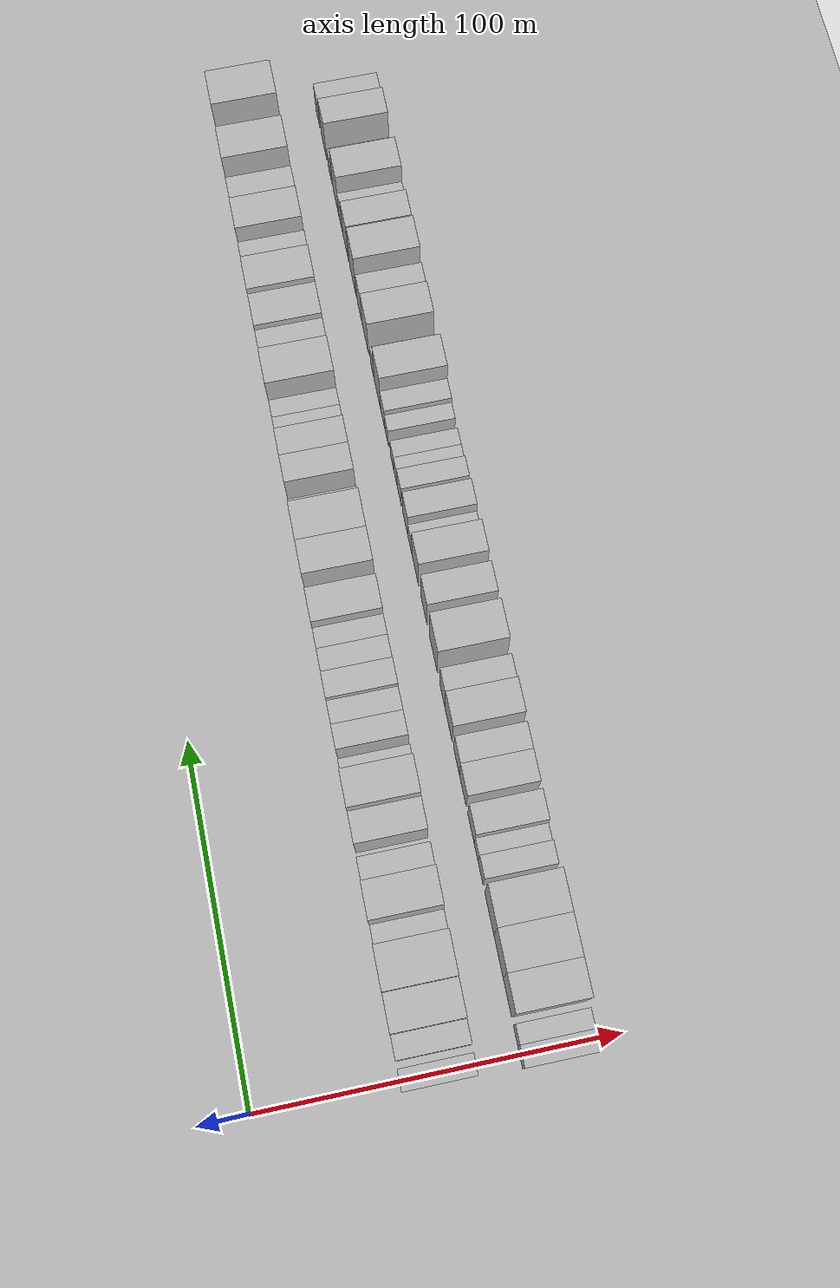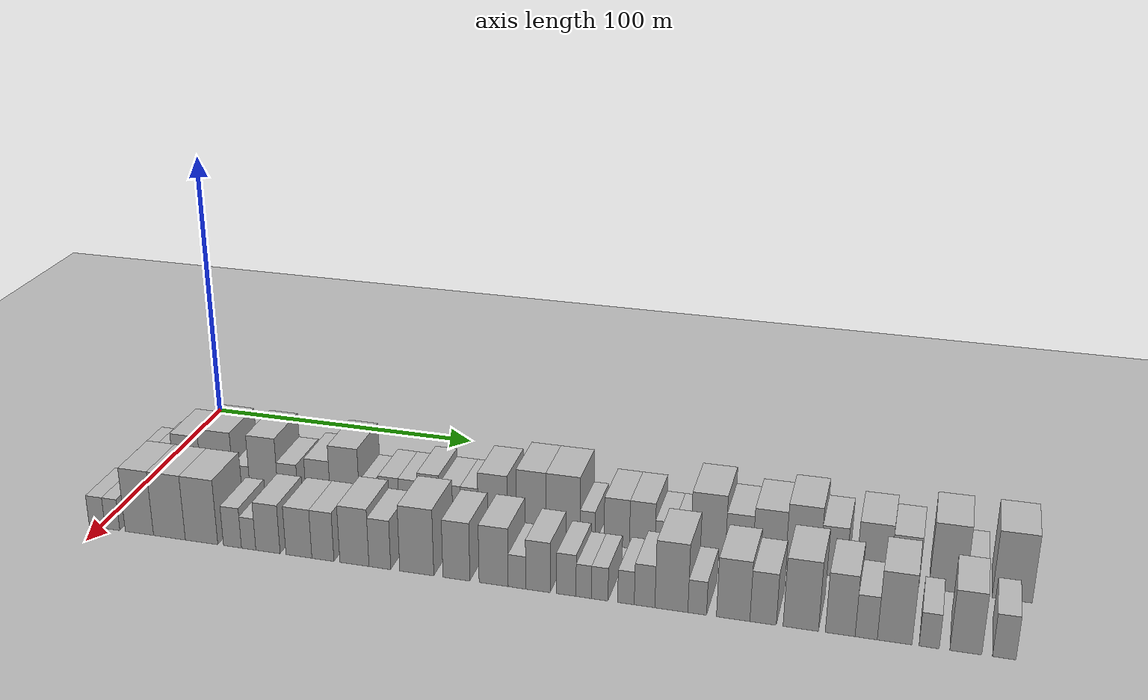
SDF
<sdf version="1.6">
 <world name="default">
  <include><name>ground_plane_1</name><uri>model://HANNAS_ground_plane</uri></include>
  <include>
   <name>ground_plane_2</name>
   <uri>model://HANNAS_ground_plane</uri>
   <pose>100 0 0  0 0 0</pose>
  </include>
  <model name="building_34">
   <static>1</static>
   <pose>50.0000 0.2510 0 0.000000 0.000000 0.000000</pose>
   <link name="link">
    <pose>0 0 6.00 0 0 0</pose>
    <collision name="collision"><geometry><box><size>20.0000 5.7335 12.0000</size></box></geometry></collision>
    <visual name="visual">
     <cast_shadows>0</cast_shadows>
     <geometry><box><size>20.0000 5.7335 12.0000</size></box></geometry>
     <material>
      <script>
       <uri>model://HANNAS_wall/materials/scripts</uri>
       <uri>model://HANNAS_wall/materials/textures</uri>
       <name>vrc/HANNAS_wall</name>
      </script>
     </material>
    </visual>
   </link>
  </model>
  <model name="building_35">
   <static>1</static>
   <pose>50.0000 8.3364 0 0.000000 0.000000 0.000000</pose>
   <link name="link">
    <pose>0 0 7.50 0 0 0</pose>
    <collision name="collision"><geometry><box><size>20.0000 6.4373 15.0000</size></box></geometry></collision>
    <visual name="visual">
     <cast_shadows>0</cast_shadows>
     <geometry><box><size>20.0000 6.4373 15.0000</size></box></geometry>
     <material>
      <script>
       <uri>model://HANNAS_wall/materials/scripts</uri>
       <uri>model://HANNAS_wall/materials/textures</uri>
       <name>vrc/HANNAS_wall</name>
      </script>
     </material>
    </visual>
   </link>
  </model>
  <model name="building_36">
   <static>1</static>
   <pose>50.0000 16.7058 0 0.000000 0.000000 0.000000</pose>
   <link name="link">
    <pose>0 0 10.50 0 0 0</pose>
    <collision name="collision"><geometry><box><size>20.0000 10.3015 21.0000</size></box></geometry></collision>
    <visual name="visual">
     <cast_shadows>0</cast_shadows>
     <geometry><box><size>20.0000 10.3015 21.0000</size></box></geometry>
     <material>
      <script>
       <uri>model://HANNAS_wall/materials/scripts</uri>
       <uri>model://HANNAS_wall/materials/textures</uri>
       <name>vrc/HANNAS_wall</name>
      </script>
     </material>
    </visual>
   </link>
  </model>
  <model name="building_37">
   <static>1</static>
   <pose>50.0000 27.8285 0 0.000000 0.000000 0.000000</pose>
   <link name="link">
    <pose>0 0 12.00 0 0 0</pose>
    <collision name="collision"><geometry><box><size>20.0000 11.9438 24.0000</size></box></geometry></collision>
    <visual name="visual">
     <cast_shadows>0</cast_shadows>
     <geometry><box><size>20.0000 11.9438 24.0000</size></box></geometry>
     <material>
      <script>
       <uri>model://HANNAS_wall/materials/scripts</uri>
       <uri>model://HANNAS_wall/materials/textures</uri>
       <name>vrc/HANNAS_wall</name>
      </script>
     </material>
    </visual>
   </link>
  </model>
  <model name="building_38">
   <static>1</static>
   <pose>50.0000 36.7897 0 0.000000 0.000000 0.000000</pose>
   <link name="link">
    <pose>0 0 6.00 0 0 0</pose>
    <collision name="collision"><geometry><box><size>20.0000 5.9785 12.0000</size></box></geometry></collision>
    <visual name="visual">
     <cast_shadows>0</cast_shadows>
     <geometry><box><size>20.0000 5.9785 12.0000</size></box></geometry>
     <material>
      <script>
       <uri>model://HANNAS_wall/materials/scripts</uri>
       <uri>model://HANNAS_wall/materials/textures</uri>
       <name>vrc/HANNAS_wall</name>
      </script>
     </material>
    </visual>
   </link>
  </model>
  <model name="building_39">
   <static>1</static>
   <pose>50.0000 44.9411 0 0.000000 0.000000 0.000000</pose>
   <link name="link">
    <pose>0 0 12.00 0 0 0</pose>
    <collision name="collision"><geometry><box><size>20.0000 10.3244 24.0000</size></box></geometry></collision>
    <visual name="visual">
     <cast_shadows>0</cast_shadows>
     <geometry><box><size>20.0000 10.3244 24.0000</size></box></geometry>
     <material>
      <script>
       <uri>model://HANNAS_wall/materials/scripts</uri>
       <uri>model://HANNAS_wall/materials/textures</uri>
       <name>vrc/HANNAS_wall</name>
      </script>
     </material>
    </visual>
   </link>
  </model>
  <model name="building_40">
   <static>1</static>
   <pose>50.0000 53.7202 0 0.000000 0.000000 0.000000</pose>
   <link name="link">
    <pose>0 0 7.50 0 0 0</pose>
    <collision name="collision"><geometry><box><size>20.0000 7.2339 15.0000</size></box></geometry></collision>
    <visual name="visual">
     <cast_shadows>0</cast_shadows>
     <geometry><box><size>20.0000 7.2339 15.0000</size></box></geometry>
     <material>
      <script>
       <uri>model://HANNAS_wall/materials/scripts</uri>
       <uri>model://HANNAS_wall/materials/textures</uri>
       <name>vrc/HANNAS_wall</name>
      </script>
     </material>
    </visual>
   </link>
  </model>
  <model name="building_41">
   <static>1</static>
   <pose>50.0000 64.7341 0 0.000000 0.000000 0.000000</pose>
   <link name="link">
    <pose>0 0 9.00 0 0 0</pose>
    <collision name="collision"><geometry><box><size>20.0000 8.7940 18.0000</size></box></geometry></collision>
    <visual name="visual">
     <cast_shadows>0</cast_shadows>
     <geometry><box><size>20.0000 8.7940 18.0000</size></box></geometry>
     <material>
      <script>
       <uri>model://HANNAS_wall/materials/scripts</uri>
       <uri>model://HANNAS_wall/materials/textures</uri>
       <name>vrc/HANNAS_wall</name>
      </script>
     </material>
    </visual>
   </link>
  </model>
  <model name="building_42">
   <static>1</static>
   <pose>50.0000 74.3640 0 0.000000 0.000000 0.000000</pose>
   <link name="link">
    <pose>0 0 12.00 0 0 0</pose>
    <collision name="collision"><geometry><box><size>20.0000 10.4658 24.0000</size></box></geometry></collision>
    <visual name="visual">
     <cast_shadows>0</cast_shadows>
     <geometry><box><size>20.0000 10.4658 24.0000</size></box></geometry>
     <material>
      <script>
       <uri>model://HANNAS_wall/materials/scripts</uri>
       <uri>model://HANNAS_wall/materials/textures</uri>
       <name>vrc/HANNAS_wall</name>
      </script>
     </material>
    </visual>
   </link>
  </model>
  <model name="building_43">
   <static>1</static>
   <pose>50.0000 82.0531 0 0.000000 0.000000 0.000000</pose>
   <link name="link">
    <pose>0 0 6.00 0 0 0</pose>
    <collision name="collision"><geometry><box><size>20.0000 4.9122 12.0000</size></box></geometry></collision>
    <visual name="visual">
     <cast_shadows>0</cast_shadows>
     <geometry><box><size>20.0000 4.9122 12.0000</size></box></geometry>
     <material>
      <script>
       <uri>model://HANNAS_wall/materials/scripts</uri>
       <uri>model://HANNAS_wall/materials/textures</uri>
       <name>vrc/HANNAS_wall</name>
      </script>
     </material>
    </visual>
   </link>
  </model>
  <model name="building_44">
   <static>1</static>
   <pose>50.0000 90.0316 0 0.000000 0.000000 0.000000</pose>
   <link name="link">
    <pose>0 0 7.50 0 0 0</pose>
    <collision name="collision"><geometry><box><size>20.0000 7.0448 15.0000</size></box></geometry></collision>
    <visual name="visual">
     <cast_shadows>0</cast_shadows>
     <geometry><box><size>20.0000 7.0448 15.0000</size></box></geometry>
     <material>
      <script>
       <uri>model://HANNAS_wall/materials/scripts</uri>
       <uri>model://HANNAS_wall/materials/textures</uri>
       <name>vrc/HANNAS_wall</name>
      </script>
     </material>
    </visual>
   </link>
  </model>
  <model name="building_45">
   <static>1</static>
   <pose>50.0000 96.8660 0 0.000000 0.000000 0.000000</pose>
   <link name="link">
    <pose>0 0 7.50 0 0 0</pose>
    <collision name="collision"><geometry><box><size>20.0000 6.6240 15.0000</size></box></geometry></collision>
    <visual name="visual">
     <cast_shadows>0</cast_shadows>
     <geometry><box><size>20.0000 6.6240 15.0000</size></box></geometry>
     <material>
      <script>
       <uri>model://HANNAS_wall/materials/scripts</uri>
       <uri>model://HANNAS_wall/materials/textures</uri>
       <name>vrc/HANNAS_wall</name>
      </script>
     </material>
    </visual>
   </link>
  </model>
  <model name="building_46">
   <static>1</static>
   <pose>50.0000 103.9636 0 0.000000 0.000000 0.000000</pose>
   <link name="link">
    <pose>0 0 9.00 0 0 0</pose>
    <collision name="collision"><geometry><box><size>20.0000 7.5711 18.0000</size></box></geometry></collision>
    <visual name="visual">
     <cast_shadows>0</cast_shadows>
     <geometry><box><size>20.0000 7.5711 18.0000</size></box></geometry>
     <material>
      <script>
       <uri>model://HANNAS_wall/materials/scripts</uri>
       <uri>model://HANNAS_wall/materials/textures</uri>
       <name>vrc/HANNAS_wall</name>
      </script>
     </material>
    </visual>
   </link>
  </model>
  <model name="building_47">
   <static>1</static>
   <pose>50.0000 111.4161 0 0.000000 0.000000 0.000000</pose>
   <link name="link">
    <pose>0 0 7.50 0 0 0</pose>
    <collision name="collision"><geometry><box><size>20.0000 7.3340 15.0000</size></box></geometry></collision>
    <visual name="visual">
     <cast_shadows>0</cast_shadows>
     <geometry><box><size>20.0000 7.3340 15.0000</size></box></geometry>
     <material>
      <script>
       <uri>model://HANNAS_wall/materials/scripts</uri>
       <uri>model://HANNAS_wall/materials/textures</uri>
       <name>vrc/HANNAS_wall</name>
      </script>
     </material>
    </visual>
   </link>
  </model>
  <model name="building_48">
   <static>1</static>
   <pose>50.0000 118.0838 0 0.000000 0.000000 0.000000</pose>
   <link name="link">
    <pose>0 0 7.50 0 0 0</pose>
    <collision name="collision"><geometry><box><size>20.0000 6.0014 15.0000</size></box></geometry></collision>
    <visual name="visual">
     <cast_shadows>0</cast_shadows>
     <geometry><box><size>20.0000 6.0014 15.0000</size></box></geometry>
     <material>
      <script>
       <uri>model://HANNAS_wall/materials/scripts</uri>
       <uri>model://HANNAS_wall/materials/textures</uri>
       <name>vrc/HANNAS_wall</name>
      </script>
     </material>
    </visual>
   </link>
  </model>
  <model name="building_49">
   <static>1</static>
   <pose>50.0000 126.0789 0 0.000000 0.000000 0.000000</pose>
   <link name="link">
    <pose>0 0 10.50 0 0 0</pose>
    <collision name="collision"><geometry><box><size>20.0000 9.9887 21.0000</size></box></geometry></collision>
    <visual name="visual">
     <cast_shadows>0</cast_shadows>
     <geometry><box><size>20.0000 9.9887 21.0000</size></box></geometry>
     <material>
      <script>
       <uri>model://HANNAS_wall/materials/scripts</uri>
       <uri>model://HANNAS_wall/materials/textures</uri>
       <name>vrc/HANNAS_wall</name>
      </script>
     </material>
    </visual>
   </link>
  </model>
  <model name="building_50">
   <static>1</static>
   <pose>50.0000 139.0721 0 0.000000 0.000000 0.000000</pose>
   <link name="link">
    <pose>0 0 12.00 0 0 0</pose>
    <collision name="collision"><geometry><box><size>20.0000 9.9978 24.0000</size></box></geometry></collision>
    <visual name="visual">
     <cast_shadows>0</cast_shadows>
     <geometry><box><size>20.0000 9.9978 24.0000</size></box></geometry>
     <material>
      <script>
       <uri>model://HANNAS_wall/materials/scripts</uri>
       <uri>model://HANNAS_wall/materials/textures</uri>
       <name>vrc/HANNAS_wall</name>
      </script>
     </material>
    </visual>
   </link>
  </model>
  <model name="building_51">
   <static>1</static>
   <pose>50.0000 149.7986 0 0.000000 0.000000 0.000000</pose>
   <link name="link">
    <pose>0 0 12.00 0 0 0</pose>
    <collision name="collision"><geometry><box><size>20.0000 11.4551 24.0000</size></box></geometry></collision>
    <visual name="visual">
     <cast_shadows>0</cast_shadows>
     <geometry><box><size>20.0000 11.4551 24.0000</size></box></geometry>
     <material>
      <script>
       <uri>model://HANNAS_wall/materials/scripts</uri>
       <uri>model://HANNAS_wall/materials/textures</uri>
       <name>vrc/HANNAS_wall</name>
      </script>
     </material>
    </visual>
   </link>
  </model>
  <model name="building_52">
   <static>1</static>
   <pose>50.0000 158.0299 0 0.000000 0.000000 0.000000</pose>
   <link name="link">
    <pose>0 0 6.00 0 0 0</pose>
    <collision name="collision"><geometry><box><size>20.0000 5.0075 12.0000</size></box></geometry></collision>
    <visual name="visual">
     <cast_shadows>0</cast_shadows>
     <geometry><box><size>20.0000 5.0075 12.0000</size></box></geometry>
     <material>
      <script>
       <uri>model://HANNAS_wall/materials/scripts</uri>
       <uri>model://HANNAS_wall/materials/textures</uri>
       <name>vrc/HANNAS_wall</name>
      </script>
     </material>
    </visual>
   </link>
  </model>
  <model name="building_53">
   <static>1</static>
   <pose>50.0000 167.7254 0 0.000000 0.000000 0.000000</pose>
   <link name="link">
    <pose>0 0 9.00 0 0 0</pose>
    <collision name="collision"><geometry><box><size>20.0000 8.3835 18.0000</size></box></geometry></collision>
    <visual name="visual">
     <cast_shadows>0</cast_shadows>
     <geometry><box><size>20.0000 8.3835 18.0000</size></box></geometry>
     <material>
      <script>
       <uri>model://HANNAS_wall/materials/scripts</uri>
       <uri>model://HANNAS_wall/materials/textures</uri>
       <name>vrc/HANNAS_wall</name>
      </script>
     </material>
    </visual>
   </link>
  </model>
  <model name="building_54">
   <static>1</static>
   <pose>50.0000 176.0990 0 0.000000 0.000000 0.000000</pose>
   <link name="link">
    <pose>0 0 9.00 0 0 0</pose>
    <collision name="collision"><geometry><box><size>20.0000 8.3637 18.0000</size></box></geometry></collision>
    <visual name="visual">
     <cast_shadows>0</cast_shadows>
     <geometry><box><size>20.0000 8.3637 18.0000</size></box></geometry>
     <material>
      <script>
       <uri>model://HANNAS_wall/materials/scripts</uri>
       <uri>model://HANNAS_wall/materials/textures</uri>
       <name>vrc/HANNAS_wall</name>
      </script>
     </material>
    </visual>
   </link>
  </model>
  <model name="building_55">
   <static>1</static>
   <pose>50.0000 183.2807 0 0.000000 0.000000 0.000000</pose>
   <link name="link">
    <pose>0 0 6.00 0 0 0</pose>
    <collision name="collision"><geometry><box><size>20.0000 5.9995 12.0000</size></box></geometry></collision>
    <visual name="visual">
     <cast_shadows>0</cast_shadows>
     <geometry><box><size>20.0000 5.9995 12.0000</size></box></geometry>
     <material>
      <script>
       <uri>model://HANNAS_wall/materials/scripts</uri>
       <uri>model://HANNAS_wall/materials/textures</uri>
       <name>vrc/HANNAS_wall</name>
      </script>
     </material>
    </visual>
   </link>
  </model>
  <model name="building_56">
   <static>1</static>
   <pose>50.0000 189.0195 0 0.000000 0.000000 0.000000</pose>
   <link name="link">
    <pose>0 0 6.00 0 0 0</pose>
    <collision name="collision"><geometry><box><size>20.0000 5.4782 12.0000</size></box></geometry></collision>
    <visual name="visual">
     <cast_shadows>0</cast_shadows>
     <geometry><box><size>20.0000 5.4782 12.0000</size></box></geometry>
     <material>
      <script>
       <uri>model://HANNAS_wall/materials/scripts</uri>
       <uri>model://HANNAS_wall/materials/textures</uri>
       <name>vrc/HANNAS_wall</name>
      </script>
     </material>
    </visual>
   </link>
  </model>
  <model name="building_57">
   <static>1</static>
   <pose>50.0000 197.3581 0 0.000000 0.000000 0.000000</pose>
   <link name="link">
    <pose>0 0 12.00 0 0 0</pose>
    <collision name="collision"><geometry><box><size>20.0000 11.1989 24.0000</size></box></geometry></collision>
    <visual name="visual">
     <cast_shadows>0</cast_shadows>
     <geometry><box><size>20.0000 11.1989 24.0000</size></box></geometry>
     <material>
      <script>
       <uri>model://HANNAS_wall/materials/scripts</uri>
       <uri>model://HANNAS_wall/materials/textures</uri>
       <name>vrc/HANNAS_wall</name>
      </script>
     </material>
    </visual>
   </link>
  </model>
  <model name="building_58">
   <static>1</static>
   <pose>50.0000 207.3073 0 0.000000 0.000000 0.000000</pose>
   <link name="link">
    <pose>0 0 9.00 0 0 0</pose>
    <collision name="collision"><geometry><box><size>20.0000 8.6995 18.0000</size></box></geometry></collision>
    <visual name="visual">
     <cast_shadows>0</cast_shadows>
     <geometry><box><size>20.0000 8.6995 18.0000</size></box></geometry>
     <material>
      <script>
       <uri>model://HANNAS_wall/materials/scripts</uri>
       <uri>model://HANNAS_wall/materials/textures</uri>
       <name>vrc/HANNAS_wall</name>
      </script>
     </material>
    </visual>
   </link>
  </model>
  <model name="building_59">
   <static>1</static>
   <pose>50.0000 216.8353 0 0.000000 0.000000 0.000000</pose>
   <link name="link">
    <pose>0 0 10.50 0 0 0</pose>
    <collision name="collision"><geometry><box><size>20.0000 10.3565 21.0000</size></box></geometry></collision>
    <visual name="visual">
     <cast_shadows>0</cast_shadows>
     <geometry><box><size>20.0000 10.3565 21.0000</size></box></geometry>
     <material>
      <script>
       <uri>model://HANNAS_wall/materials/scripts</uri>
       <uri>model://HANNAS_wall/materials/textures</uri>
       <name>vrc/HANNAS_wall</name>
      </script>
     </material>
    </visual>
   </link>
  </model>
  <model name="building_60">
   <static>1</static>
   <pose>50.0000 227.3803 0 0.000000 0.000000 0.000000</pose>
   <link name="link">
    <pose>0 0 12.00 0 0 0</pose>
    <collision name="collision"><geometry><box><size>20.0000 10.7336 24.0000</size></box></geometry></collision>
    <visual name="visual">
     <cast_shadows>0</cast_shadows>
     <geometry><box><size>20.0000 10.7336 24.0000</size></box></geometry>
     <material>
      <script>
       <uri>model://HANNAS_wall/materials/scripts</uri>
       <uri>model://HANNAS_wall/materials/textures</uri>
       <name>vrc/HANNAS_wall</name>
      </script>
     </material>
    </visual>
   </link>
  </model>
  <model name="building_61">
   <static>1</static>
   <pose>50.0000 236.8530 0 0.000000 0.000000 0.000000</pose>
   <link name="link">
    <pose>0 0 9.00 0 0 0</pose>
    <collision name="collision"><geometry><box><size>20.0000 8.2119 18.0000</size></box></geometry></collision>
    <visual name="visual">
     <cast_shadows>0</cast_shadows>
     <geometry><box><size>20.0000 8.2119 18.0000</size></box></geometry>
     <material>
      <script>
       <uri>model://HANNAS_wall/materials/scripts</uri>
       <uri>model://HANNAS_wall/materials/textures</uri>
       <name>vrc/HANNAS_wall</name>
      </script>
     </material>
    </visual>
   </link>
  </model>
  <model name="building_62">
   <static>1</static>
   <pose>50.0000 249.1759 0 0.000000 0.000000 0.000000</pose>
   <link name="link">
    <pose>0 0 10.50 0 0 0</pose>
    <collision name="collision"><geometry><box><size>20.0000 10.4338 21.0000</size></box></geometry></collision>
    <visual name="visual">
     <cast_shadows>0</cast_shadows>
     <geometry><box><size>20.0000 10.4338 21.0000</size></box></geometry>
     <material>
      <script>
       <uri>model://HANNAS_wall/materials/scripts</uri>
       <uri>model://HANNAS_wall/materials/textures</uri>
       <name>vrc/HANNAS_wall</name>
      </script>
     </material>
    </visual>
   </link>
  </model>
  <model name="building_63">
   <static>1</static>
   <pose>50.0000 258.8186 0 0.000000 0.000000 0.000000</pose>
   <link name="link">
    <pose>0 0 9.00 0 0 0</pose>
    <collision name="collision"><geometry><box><size>20.0000 8.8517 18.0000</size></box></geometry></collision>
    <visual name="visual">
     <cast_shadows>0</cast_shadows>
     <geometry><box><size>20.0000 8.8517 18.0000</size></box></geometry>
     <material>
      <script>
       <uri>model://HANNAS_wall/materials/scripts</uri>
       <uri>model://HANNAS_wall/materials/textures</uri>
       <name>vrc/HANNAS_wall</name>
      </script>
     </material>
    </visual>
   </link>
  </model>
  <model name="building_64">
   <static>1</static>
   <pose>50.0000 271.7343 0 0.000000 0.000000 0.000000</pose>
   <link name="link">
    <pose>0 0 12.00 0 0 0</pose>
    <collision name="collision"><geometry><box><size>20.0000 10.9798 24.0000</size></box></geometry></collision>
    <visual name="visual">
     <cast_shadows>0</cast_shadows>
     <geometry><box><size>20.0000 10.9798 24.0000</size></box></geometry>
     <material>
      <script>
       <uri>model://HANNAS_wall/materials/scripts</uri>
       <uri>model://HANNAS_wall/materials/textures</uri>
       <name>vrc/HANNAS_wall</name>
      </script>
     </material>
    </visual>
   </link>
  </model>
  <model name="building_65">
   <static>1</static>
   <pose>50.0000 280.1727 0 0.000000 0.000000 0.000000</pose>
   <link name="link">
    <pose>0 0 6.00 0 0 0</pose>
    <collision name="collision"><geometry><box><size>20.0000 5.8970 12.0000</size></box></geometry></collision>
    <visual name="visual">
     <cast_shadows>0</cast_shadows>
     <geometry><box><size>20.0000 5.8970 12.0000</size></box></geometry>
     <material>
      <script>
       <uri>model://HANNAS_wall/materials/scripts</uri>
       <uri>model://HANNAS_wall/materials/textures</uri>
       <name>vrc/HANNAS_wall</name>
      </script>
     </material>
    </visual>
   </link>
  </model>
  <model name="building_66">
   <static>1</static>
   <pose>50.0000 291.0490 0 0.000000 0.000000 0.000000</pose>
   <link name="link">
    <pose>0 0 12.00 0 0 0</pose>
    <collision name="collision"><geometry><box><size>20.0000 11.8557 24.0000</size></box></geometry></collision>
    <visual name="visual">
     <cast_shadows>0</cast_shadows>
     <geometry><box><size>20.0000 11.8557 24.0000</size></box></geometry>
     <material>
      <script>
       <uri>model://HANNAS_wall/materials/scripts</uri>
       <uri>model://HANNAS_wall/materials/textures</uri>
       <name>vrc/HANNAS_wall</name>
      </script>
     </material>
    </visual>
   </link>
  </model>
  <model name="building_101">
   <static>1</static>
   <pose>82.0000 -0.4749 0 0.000000 0.000000 0.000000</pose>
   <link name="link">
    <pose>0 0 6.00 0 0 0</pose>
    <collision name="collision"><geometry><box><size>20.0000 5.8154 12.0000</size></box></geometry></collision>
    <visual name="visual">
     <cast_shadows>0</cast_shadows>
     <geometry><box><size>20.0000 5.8154 12.0000</size></box></geometry>
     <material>
      <script>
       <uri>model://HANNAS_wall/materials/scripts</uri>
       <uri>model://HANNAS_wall/materials/textures</uri>
       <name>vrc/HANNAS_wall</name>
      </script>
     </material>
    </visual>
   </link>
  </model>
  <model name="building_102">
   <static>1</static>
   <pose>82.0000 5.0881 0 0.000000 0.000000 0.000000</pose>
   <link name="link">
    <pose>0 0 6.00 0 0 0</pose>
    <collision name="collision"><geometry><box><size>20.0000 5.3107 12.0000</size></box></geometry></collision>
    <visual name="visual">
     <cast_shadows>0</cast_shadows>
     <geometry><box><size>20.0000 5.3107 12.0000</size></box></geometry>
     <material>
      <script>
       <uri>model://HANNAS_wall/materials/scripts</uri>
       <uri>model://HANNAS_wall/materials/textures</uri>
       <name>vrc/HANNAS_wall</name>
      </script>
     </material>
    </visual>
   </link>
  </model>
  <model name="building_103">
   <static>1</static>
   <pose>82.0000 14.8344 0 0.000000 0.000000 0.000000</pose>
   <link name="link">
    <pose>0 0 12.00 0 0 0</pose>
    <collision name="collision"><geometry><box><size>20.0000 10.1818 24.0000</size></box></geometry></collision>
    <visual name="visual">
     <cast_shadows>0</cast_shadows>
     <geometry><box><size>20.0000 10.1818 24.0000</size></box></geometry>
     <material>
      <script>
       <uri>model://HANNAS_wall/materials/scripts</uri>
       <uri>model://HANNAS_wall/materials/textures</uri>
       <name>vrc/HANNAS_wall</name>
      </script>
     </material>
    </visual>
   </link>
  </model>
  <model name="building_104">
   <static>1</static>
   <pose>82.0000 25.6174 0 0.000000 0.000000 0.000000</pose>
   <link name="link">
    <pose>0 0 12.00 0 0 0</pose>
    <collision name="collision"><geometry><box><size>20.0000 11.3843 24.0000</size></box></geometry></collision>
    <visual name="visual">
     <cast_shadows>0</cast_shadows>
     <geometry><box><size>20.0000 11.3843 24.0000</size></box></geometry>
     <material>
      <script>
       <uri>model://HANNAS_wall/materials/scripts</uri>
       <uri>model://HANNAS_wall/materials/textures</uri>
       <name>vrc/HANNAS_wall</name>
      </script>
     </material>
    </visual>
   </link>
  </model>
  <model name="building_105">
   <static>1</static>
   <pose>82.0000 37.0553 0 0.000000 0.000000 0.000000</pose>
   <link name="link">
    <pose>0 0 12.00 0 0 0</pose>
    <collision name="collision"><geometry><box><size>20.0000 11.4916 24.0000</size></box></geometry></collision>
    <visual name="visual">
     <cast_shadows>0</cast_shadows>
     <geometry><box><size>20.0000 11.4916 24.0000</size></box></geometry>
     <material>
      <script>
       <uri>model://HANNAS_wall/materials/scripts</uri>
       <uri>model://HANNAS_wall/materials/textures</uri>
       <name>vrc/HANNAS_wall</name>
      </script>
     </material>
    </visual>
   </link>
  </model>
  <model name="building_106">
   <static>1</static>
   <pose>82.0000 47.9563 0 0.000000 0.000000 0.000000</pose>
   <link name="link">
    <pose>0 0 7.50 0 0 0</pose>
    <collision name="collision"><geometry><box><size>20.0000 6.3104 15.0000</size></box></geometry></collision>
    <visual name="visual">
     <cast_shadows>0</cast_shadows>
     <geometry><box><size>20.0000 6.3104 15.0000</size></box></geometry>
     <material>
      <script>
       <uri>model://HANNAS_wall/materials/scripts</uri>
       <uri>model://HANNAS_wall/materials/textures</uri>
       <name>vrc/HANNAS_wall</name>
      </script>
     </material>
    </visual>
   </link>
  </model>
  <model name="building_107">
   <static>1</static>
   <pose>82.0000 53.6147 0 0.000000 0.000000 0.000000</pose>
   <link name="link">
    <pose>0 0 6.00 0 0 0</pose>
    <collision name="collision"><geometry><box><size>20.0000 5.0064 12.0000</size></box></geometry></collision>
    <visual name="visual">
     <cast_shadows>0</cast_shadows>
     <geometry><box><size>20.0000 5.0064 12.0000</size></box></geometry>
     <material>
      <script>
       <uri>model://HANNAS_wall/materials/scripts</uri>
       <uri>model://HANNAS_wall/materials/textures</uri>
       <name>vrc/HANNAS_wall</name>
      </script>
     </material>
    </visual>
   </link>
  </model>
  <model name="building_108">
   <static>1</static>
   <pose>82.0000 60.3227 0 0.000000 0.000000 0.000000</pose>
   <link name="link">
    <pose>0 0 9.00 0 0 0</pose>
    <collision name="collision"><geometry><box><size>20.0000 8.4095 18.0000</size></box></geometry></collision>
    <visual name="visual">
     <cast_shadows>0</cast_shadows>
     <geometry><box><size>20.0000 8.4095 18.0000</size></box></geometry>
     <material>
      <script>
       <uri>model://HANNAS_wall/materials/scripts</uri>
       <uri>model://HANNAS_wall/materials/textures</uri>
       <name>vrc/HANNAS_wall</name>
      </script>
     </material>
    </visual>
   </link>
  </model>
  <model name="building_109">
   <static>1</static>
   <pose>82.0000 70.9838 0 0.000000 0.000000 0.000000</pose>
   <link name="link">
    <pose>0 0 9.00 0 0 0</pose>
    <collision name="collision"><geometry><box><size>20.0000 8.9127 18.0000</size></box></geometry></collision>
    <visual name="visual">
     <cast_shadows>0</cast_shadows>
     <geometry><box><size>20.0000 8.9127 18.0000</size></box></geometry>
     <material>
      <script>
       <uri>model://HANNAS_wall/materials/scripts</uri>
       <uri>model://HANNAS_wall/materials/textures</uri>
       <name>vrc/HANNAS_wall</name>
      </script>
     </material>
    </visual>
   </link>
  </model>
  <model name="building_110">
   <static>1</static>
   <pose>82.0000 79.2078 0 0.000000 0.000000 0.000000</pose>
   <link name="link">
    <pose>0 0 9.00 0 0 0</pose>
    <collision name="collision"><geometry><box><size>20.0000 7.5354 18.0000</size></box></geometry></collision>
    <visual name="visual">
     <cast_shadows>0</cast_shadows>
     <geometry><box><size>20.0000 7.5354 18.0000</size></box></geometry>
     <material>
      <script>
       <uri>model://HANNAS_wall/materials/scripts</uri>
       <uri>model://HANNAS_wall/materials/textures</uri>
       <name>vrc/HANNAS_wall</name>
      </script>
     </material>
    </visual>
   </link>
  </model>
  <model name="building_111">
   <static>1</static>
   <pose>82.0000 89.8831 0 0.000000 0.000000 0.000000</pose>
   <link name="link">
    <pose>0 0 10.50 0 0 0</pose>
    <collision name="collision"><geometry><box><size>20.0000 9.8151 21.0000</size></box></geometry></collision>
    <visual name="visual">
     <cast_shadows>0</cast_shadows>
     <geometry><box><size>20.0000 9.8151 21.0000</size></box></geometry>
     <material>
      <script>
       <uri>model://HANNAS_wall/materials/scripts</uri>
       <uri>model://HANNAS_wall/materials/textures</uri>
       <name>vrc/HANNAS_wall</name>
      </script>
     </material>
    </visual>
   </link>
  </model>
  <model name="building_112">
   <static>1</static>
   <pose>82.0000 98.4345 0 0.000000 0.000000 0.000000</pose>
   <link name="link">
    <pose>0 0 9.00 0 0 0</pose>
    <collision name="collision"><geometry><box><size>20.0000 7.2878 18.0000</size></box></geometry></collision>
    <visual name="visual">
     <cast_shadows>0</cast_shadows>
     <geometry><box><size>20.0000 7.2878 18.0000</size></box></geometry>
     <material>
      <script>
       <uri>model://HANNAS_wall/materials/scripts</uri>
       <uri>model://HANNAS_wall/materials/textures</uri>
       <name>vrc/HANNAS_wall</name>
      </script>
     </material>
    </visual>
   </link>
  </model>
  <model name="building_113">
   <static>1</static>
   <pose>82.0000 110.7054 0 0.000000 0.000000 0.000000</pose>
   <link name="link">
    <pose>0 0 12.00 0 0 0</pose>
    <collision name="collision"><geometry><box><size>20.0000 11.2538 24.0000</size></box></geometry></collision>
    <visual name="visual">
     <cast_shadows>0</cast_shadows>
     <geometry><box><size>20.0000 11.2538 24.0000</size></box></geometry>
     <material>
      <script>
       <uri>model://HANNAS_wall/materials/scripts</uri>
       <uri>model://HANNAS_wall/materials/textures</uri>
       <name>vrc/HANNAS_wall</name>
      </script>
     </material>
    </visual>
   </link>
  </model>
  <model name="building_114">
   <static>1</static>
   <pose>82.0000 123.7329 0 0.000000 0.000000 0.000000</pose>
   <link name="link">
    <pose>0 0 10.50 0 0 0</pose>
    <collision name="collision"><geometry><box><size>20.0000 8.8012 21.0000</size></box></geometry></collision>
    <visual name="visual">
     <cast_shadows>0</cast_shadows>
     <geometry><box><size>20.0000 8.8012 21.0000</size></box></geometry>
     <material>
      <script>
       <uri>model://HANNAS_wall/materials/scripts</uri>
       <uri>model://HANNAS_wall/materials/textures</uri>
       <name>vrc/HANNAS_wall</name>
      </script>
     </material>
    </visual>
   </link>
  </model>
  <model name="building_115">
   <static>1</static>
   <pose>82.0000 135.8310 0 0.000000 0.000000 0.000000</pose>
   <link name="link">
    <pose>0 0 10.50 0 0 0</pose>
    <collision name="collision"><geometry><box><size>20.0000 9.3950 21.0000</size></box></geometry></collision>
    <visual name="visual">
     <cast_shadows>0</cast_shadows>
     <geometry><box><size>20.0000 9.3950 21.0000</size></box></geometry>
     <material>
      <script>
       <uri>model://HANNAS_wall/materials/scripts</uri>
       <uri>model://HANNAS_wall/materials/textures</uri>
       <name>vrc/HANNAS_wall</name>
      </script>
     </material>
    </visual>
   </link>
  </model>
  <model name="building_116">
   <static>1</static>
   <pose>82.0000 143.3189 0 0.000000 0.000000 0.000000</pose>
   <link name="link">
    <pose>0 0 6.00 0 0 0</pose>
    <collision name="collision"><geometry><box><size>20.0000 5.5807 12.0000</size></box></geometry></collision>
    <visual name="visual">
     <cast_shadows>0</cast_shadows>
     <geometry><box><size>20.0000 5.5807 12.0000</size></box></geometry>
     <material>
      <script>
       <uri>model://HANNAS_wall/materials/scripts</uri>
       <uri>model://HANNAS_wall/materials/textures</uri>
       <name>vrc/HANNAS_wall</name>
      </script>
     </material>
    </visual>
   </link>
  </model>
  <model name="building_117">
   <static>1</static>
   <pose>82.0000 150.0102 0 0.000000 0.000000 0.000000</pose>
   <link name="link">
    <pose>0 0 9.00 0 0 0</pose>
    <collision name="collision"><geometry><box><size>20.0000 7.8019 18.0000</size></box></geometry></collision>
    <visual name="visual">
     <cast_shadows>0</cast_shadows>
     <geometry><box><size>20.0000 7.8019 18.0000</size></box></geometry>
     <material>
      <script>
       <uri>model://HANNAS_wall/materials/scripts</uri>
       <uri>model://HANNAS_wall/materials/textures</uri>
       <name>vrc/HANNAS_wall</name>
      </script>
     </material>
    </visual>
   </link>
  </model>
  <model name="building_118">
   <static>1</static>
   <pose>82.0000 158.9961 0 0.000000 0.000000 0.000000</pose>
   <link name="link">
    <pose>0 0 7.50 0 0 0</pose>
    <collision name="collision"><geometry><box><size>20.0000 6.1699 15.0000</size></box></geometry></collision>
    <visual name="visual">
     <cast_shadows>0</cast_shadows>
     <geometry><box><size>20.0000 6.1699 15.0000</size></box></geometry>
     <material>
      <script>
       <uri>model://HANNAS_wall/materials/scripts</uri>
       <uri>model://HANNAS_wall/materials/textures</uri>
       <name>vrc/HANNAS_wall</name>
      </script>
     </material>
    </visual>
   </link>
  </model>
  <model name="building_119">
   <static>1</static>
   <pose>82.0000 164.4947 0 0.000000 0.000000 0.000000</pose>
   <link name="link">
    <pose>0 0 6.00 0 0 0</pose>
    <collision name="collision"><geometry><box><size>20.0000 4.8273 12.0000</size></box></geometry></collision>
    <visual name="visual">
     <cast_shadows>0</cast_shadows>
     <geometry><box><size>20.0000 4.8273 12.0000</size></box></geometry>
     <material>
      <script>
       <uri>model://HANNAS_wall/materials/scripts</uri>
       <uri>model://HANNAS_wall/materials/textures</uri>
       <name>vrc/HANNAS_wall</name>
      </script>
     </material>
    </visual>
   </link>
  </model>
  <model name="building_120">
   <static>1</static>
   <pose>82.0000 169.5151 0 0.000000 0.000000 0.000000</pose>
   <link name="link">
    <pose>0 0 6.00 0 0 0</pose>
    <collision name="collision"><geometry><box><size>20.0000 5.2135 12.0000</size></box></geometry></collision>
    <visual name="visual">
     <cast_shadows>0</cast_shadows>
     <geometry><box><size>20.0000 5.2135 12.0000</size></box></geometry>
     <material>
      <script>
       <uri>model://HANNAS_wall/materials/scripts</uri>
       <uri>model://HANNAS_wall/materials/textures</uri>
       <name>vrc/HANNAS_wall</name>
      </script>
     </material>
    </visual>
   </link>
  </model>
  <model name="building_121">
   <static>1</static>
   <pose>82.0000 177.6936 0 0.000000 0.000000 0.000000</pose>
   <link name="link">
    <pose>0 0 6.00 0 0 0</pose>
    <collision name="collision"><geometry><box><size>20.0000 5.1436 12.0000</size></box></geometry></collision>
    <visual name="visual">
     <cast_shadows>0</cast_shadows>
     <geometry><box><size>20.0000 5.1436 12.0000</size></box></geometry>
     <material>
      <script>
       <uri>model://HANNAS_wall/materials/scripts</uri>
       <uri>model://HANNAS_wall/materials/textures</uri>
       <name>vrc/HANNAS_wall</name>
      </script>
     </material>
    </visual>
   </link>
  </model>
  <model name="building_122">
   <static>1</static>
   <pose>82.0000 183.4470 0 0.000000 0.000000 0.000000</pose>
   <link name="link">
    <pose>0 0 7.50 0 0 0</pose>
    <collision name="collision"><geometry><box><size>20.0000 6.3632 15.0000</size></box></geometry></collision>
    <visual name="visual">
     <cast_shadows>0</cast_shadows>
     <geometry><box><size>20.0000 6.3632 15.0000</size></box></geometry>
     <material>
      <script>
       <uri>model://HANNAS_wall/materials/scripts</uri>
       <uri>model://HANNAS_wall/materials/textures</uri>
       <name>vrc/HANNAS_wall</name>
      </script>
     </material>
    </visual>
   </link>
  </model>
  <model name="building_123">
   <static>1</static>
   <pose>82.0000 191.6766 0 0.000000 0.000000 0.000000</pose>
   <link name="link">
    <pose>0 0 12.00 0 0 0</pose>
    <collision name="collision"><geometry><box><size>20.0000 10.0960 24.0000</size></box></geometry></collision>
    <visual name="visual">
     <cast_shadows>0</cast_shadows>
     <geometry><box><size>20.0000 10.0960 24.0000</size></box></geometry>
     <material>
      <script>
       <uri>model://HANNAS_wall/materials/scripts</uri>
       <uri>model://HANNAS_wall/materials/textures</uri>
       <name>vrc/HANNAS_wall</name>
      </script>
     </material>
    </visual>
   </link>
  </model>
  <model name="building_124">
   <static>1</static>
   <pose>82.0000 199.5664 0 0.000000 0.000000 0.000000</pose>
   <link name="link">
    <pose>0 0 6.00 0 0 0</pose>
    <collision name="collision"><geometry><box><size>20.0000 5.6836 12.0000</size></box></geometry></collision>
    <visual name="visual">
     <cast_shadows>0</cast_shadows>
     <geometry><box><size>20.0000 5.6836 12.0000</size></box></geometry>
     <material>
      <script>
       <uri>model://HANNAS_wall/materials/scripts</uri>
       <uri>model://HANNAS_wall/materials/textures</uri>
       <name>vrc/HANNAS_wall</name>
      </script>
     </material>
    </visual>
   </link>
  </model>
  <model name="building_125">
   <static>1</static>
   <pose>82.0000 210.4319 0 0.000000 0.000000 0.000000</pose>
   <link name="link">
    <pose>0 0 10.50 0 0 0</pose>
    <collision name="collision"><geometry><box><size>20.0000 10.0475 21.0000</size></box></geometry></collision>
    <visual name="visual">
     <cast_shadows>0</cast_shadows>
     <geometry><box><size>20.0000 10.0475 21.0000</size></box></geometry>
     <material>
      <script>
       <uri>model://HANNAS_wall/materials/scripts</uri>
       <uri>model://HANNAS_wall/materials/textures</uri>
       <name>vrc/HANNAS_wall</name>
      </script>
     </material>
    </visual>
   </link>
  </model>
  <model name="building_126">
   <static>1</static>
   <pose>82.0000 219.3880 0 0.000000 0.000000 0.000000</pose>
   <link name="link">
    <pose>0 0 9.00 0 0 0</pose>
    <collision name="collision"><geometry><box><size>20.0000 7.8647 18.0000</size></box></geometry></collision>
    <visual name="visual">
     <cast_shadows>0</cast_shadows>
     <geometry><box><size>20.0000 7.8647 18.0000</size></box></geometry>
     <material>
      <script>
       <uri>model://HANNAS_wall/materials/scripts</uri>
       <uri>model://HANNAS_wall/materials/textures</uri>
       <name>vrc/HANNAS_wall</name>
      </script>
     </material>
    </visual>
   </link>
  </model>
  <model name="building_127">
   <static>1</static>
   <pose>82.0000 230.5347 0 0.000000 0.000000 0.000000</pose>
   <link name="link">
    <pose>0 0 12.00 0 0 0</pose>
    <collision name="collision"><geometry><box><size>20.0000 10.4287 24.0000</size></box></geometry></collision>
    <visual name="visual">
     <cast_shadows>0</cast_shadows>
     <geometry><box><size>20.0000 10.4287 24.0000</size></box></geometry>
     <material>
      <script>
       <uri>model://HANNAS_wall/materials/scripts</uri>
       <uri>model://HANNAS_wall/materials/textures</uri>
       <name>vrc/HANNAS_wall</name>
      </script>
     </material>
    </visual>
   </link>
  </model>
  <model name="building_128">
   <static>1</static>
   <pose>82.0000 242.0847 0 0.000000 0.000000 0.000000</pose>
   <link name="link">
    <pose>0 0 10.50 0 0 0</pose>
    <collision name="collision"><geometry><box><size>20.0000 8.6713 21.0000</size></box></geometry></collision>
    <visual name="visual">
     <cast_shadows>0</cast_shadows>
     <geometry><box><size>20.0000 8.6713 21.0000</size></box></geometry>
     <material>
      <script>
       <uri>model://HANNAS_wall/materials/scripts</uri>
       <uri>model://HANNAS_wall/materials/textures</uri>
       <name>vrc/HANNAS_wall</name>
      </script>
     </material>
    </visual>
   </link>
  </model>
  <model name="building_129">
   <static>1</static>
   <pose>82.0000 249.6196 0 0.000000 0.000000 0.000000</pose>
   <link name="link">
    <pose>0 0 7.50 0 0 0</pose>
    <collision name="collision"><geometry><box><size>20.0000 6.3984 15.0000</size></box></geometry></collision>
    <visual name="visual">
     <cast_shadows>0</cast_shadows>
     <geometry><box><size>20.0000 6.3984 15.0000</size></box></geometry>
     <material>
      <script>
       <uri>model://HANNAS_wall/materials/scripts</uri>
       <uri>model://HANNAS_wall/materials/textures</uri>
       <name>vrc/HANNAS_wall</name>
      </script>
     </material>
    </visual>
   </link>
  </model>
  <model name="building_130">
   <static>1</static>
   <pose>82.0000 257.8095 0 0.000000 0.000000 0.000000</pose>
   <link name="link">
    <pose>0 0 12.00 0 0 0</pose>
    <collision name="collision"><geometry><box><size>20.0000 9.9813 24.0000</size></box></geometry></collision>
    <visual name="visual">
     <cast_shadows>0</cast_shadows>
     <geometry><box><size>20.0000 9.9813 24.0000</size></box></geometry>
     <material>
      <script>
       <uri>model://HANNAS_wall/materials/scripts</uri>
       <uri>model://HANNAS_wall/materials/textures</uri>
       <name>vrc/HANNAS_wall</name>
      </script>
     </material>
    </visual>
   </link>
  </model>
  <model name="building_131">
   <static>1</static>
   <pose>82.0000 267.6691 0 0.000000 0.000000 0.000000</pose>
   <link name="link">
    <pose>0 0 6.00 0 0 0</pose>
    <collision name="collision"><geometry><box><size>20.0000 5.7380 12.0000</size></box></geometry></collision>
    <visual name="visual">
     <cast_shadows>0</cast_shadows>
     <geometry><box><size>20.0000 5.7380 12.0000</size></box></geometry>
     <material>
      <script>
       <uri>model://HANNAS_wall/materials/scripts</uri>
       <uri>model://HANNAS_wall/materials/textures</uri>
       <name>vrc/HANNAS_wall</name>
      </script>
     </material>
    </visual>
   </link>
  </model>
  <model name="building_132">
   <static>1</static>
   <pose>82.0000 278.0167 0 0.000000 0.000000 0.000000</pose>
   <link name="link">
    <pose>0 0 10.50 0 0 0</pose>
    <collision name="collision"><geometry><box><size>20.0000 8.9571 21.0000</size></box></geometry></collision>
    <visual name="visual">
     <cast_shadows>0</cast_shadows>
     <geometry><box><size>20.0000 8.9571 21.0000</size></box></geometry>
     <material>
      <script>
       <uri>model://HANNAS_wall/materials/scripts</uri>
       <uri>model://HANNAS_wall/materials/textures</uri>
       <name>vrc/HANNAS_wall</name>
      </script>
     </material>
    </visual>
   </link>
  </model>
  <model name="building_133">
   <static>1</static>
   <pose>82.0000 288.7642 0 0.000000 0.000000 0.000000</pose>
   <link name="link">
    <pose>0 0 7.50 0 0 0</pose>
    <collision name="collision"><geometry><box><size>20.0000 6.5379 15.0000</size></box></geometry></collision>
    <visual name="visual">
     <cast_shadows>0</cast_shadows>
     <geometry><box><size>20.0000 6.5379 15.0000</size></box></geometry>
     <material>
      <script>
       <uri>model://HANNAS_wall/materials/scripts</uri>
       <uri>model://HANNAS_wall/materials/textures</uri>
       <name>vrc/HANNAS_wall</name>
      </script>
     </material>
    </visual>
   </link>
  </model>
 </world>
</sdf>
